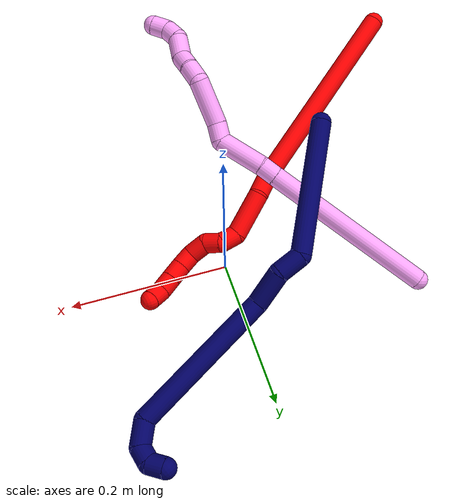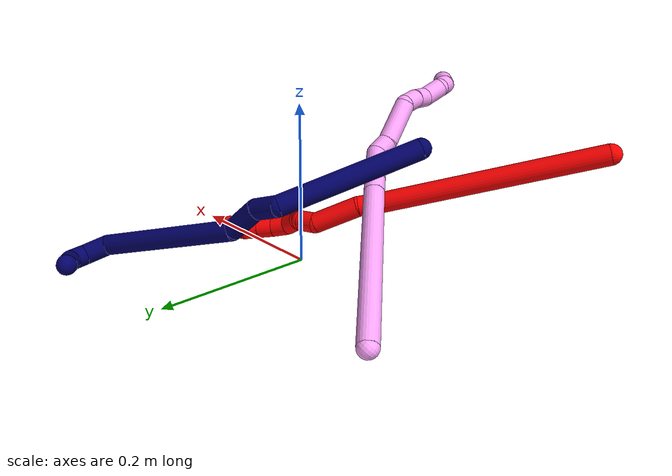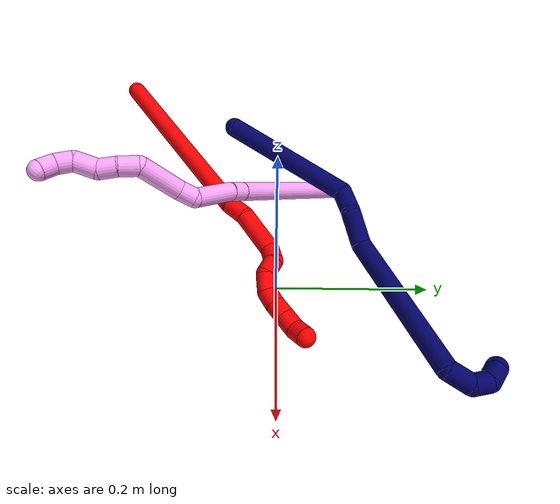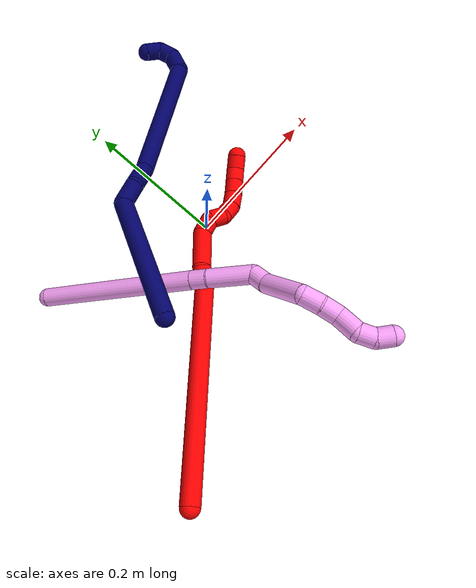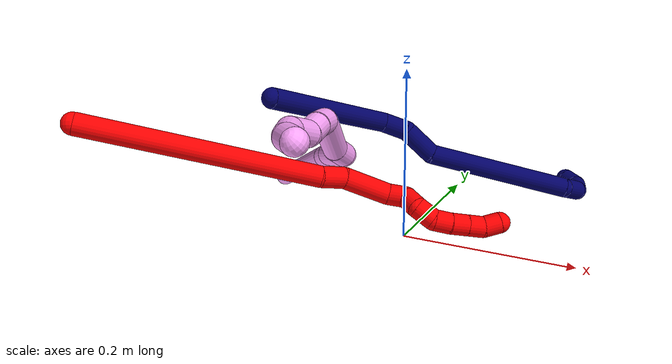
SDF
<sdf version="1.7">
 <world name="default">
  <model name="2">
   <static>0</static>
   <link name="2">
    <collision name="collision-cylinder-e_1_1_4">
     <pose>0.064474 0.018713 -0.115229 -2.9806 0.504599 -2.53504</pose>
     <geometry><cylinder><radius>0.0125</radius><length>0.266719</length></cylinder></geometry>
     <surface>
      <friction><ode><mu>1.16</mu><mu2>1.16</mu2><slip1>0</slip1><slip2>0</slip2></ode></friction>
      <contact><ode><kp>1e+06</kp><kd>1</kd><max_vel>0</max_vel><min_depth>0.001</min_depth></ode></contact>
     </surface>
    </collision>
    <visual name="visual-cylinder-e_1_1_4">
     <pose>0.064474 0.018713 -0.115229 -2.9806 0.504599 -2.53504</pose>
     <geometry><cylinder><radius>0.0125</radius><length>0.266719</length></cylinder></geometry>
     <material><ambient>1 0 0 1</ambient></material>
    </visual>
    <collision name="collision-cylinder-e_2_4_5">
     <pose>0.137267 0.036922 -0.241973 3.09782 0.625258 3.00635</pose>
     <geometry><cylinder><radius>0.0125</radius><length>0.02843</length></cylinder></geometry>
     <surface>
      <friction><ode><mu>1.16</mu><mu2>1.16</mu2><slip1>0</slip1><slip2>0</slip2></ode></friction>
      <contact><ode><kp>1e+06</kp><kd>1</kd><max_vel>0</max_vel><min_depth>0.001</min_depth></ode></contact>
     </surface>
    </collision>
    <visual name="visual-cylinder-e_2_4_5">
     <pose>0.137267 0.036922 -0.241973 3.09782 0.625258 3.00635</pose>
     <geometry><cylinder><radius>0.0125</radius><length>0.02843</length></cylinder></geometry>
     <material><ambient>1 0 0 1</ambient></material>
    </visual>
    <collision name="collision-cylinder-e_3_5_6">
     <pose>0.161781 0.043873 -0.276253 -2.82509 0.59444 -2.18095</pose>
     <geometry><cylinder><radius>0.0125</radius><length>0.05783</length></cylinder></geometry>
     <surface>
      <friction><ode><mu>1.16</mu><mu2>1.16</mu2><slip1>0</slip1><slip2>0</slip2></ode></friction>
      <contact><ode><kp>1e+06</kp><kd>1</kd><max_vel>0</max_vel><min_depth>0.001</min_depth></ode></contact>
     </surface>
    </collision>
    <visual name="visual-cylinder-e_3_5_6">
     <pose>0.161781 0.043873 -0.276253 -2.82509 0.59444 -2.18095</pose>
     <geometry><cylinder><radius>0.0125</radius><length>0.05783</length></cylinder></geometry>
     <material><ambient>1 0 0 1</ambient></material>
    </visual>
    <collision name="collision-cylinder-e_4_6_7">
     <pose>0.17847 0.052988 -0.309787 -2.98877 0.045438 -0.577021</pose>
     <geometry><cylinder><radius>0.0125</radius><length>0.021814</length></cylinder></geometry>
     <surface>
      <friction><ode><mu>1.16</mu><mu2>1.16</mu2><slip1>0</slip1><slip2>0</slip2></ode></friction>
      <contact><ode><kp>1e+06</kp><kd>1</kd><max_vel>0</max_vel><min_depth>0.001</min_depth></ode></contact>
     </surface>
    </collision>
    <visual name="visual-cylinder-e_4_6_7">
     <pose>0.17847 0.052988 -0.309787 -2.98877 0.045438 -0.577021</pose>
     <geometry><cylinder><radius>0.0125</radius><length>0.021814</length></cylinder></geometry>
     <material><ambient>1 0 0 1</ambient></material>
    </visual>
    <collision name="collision-cylinder-e_5_7_8">
     <pose>0.174332 0.060816 -0.327618 -2.4235 -0.45897 1.11347</pose>
     <geometry><cylinder><radius>0.0125</radius><length>0.020919</length></cylinder></geometry>
     <surface>
      <friction><ode><mu>1.16</mu><mu2>1.16</mu2><slip1>0</slip1><slip2>0</slip2></ode></friction>
      <contact><ode><kp>1e+06</kp><kd>1</kd><max_vel>0</max_vel><min_depth>0.001</min_depth></ode></contact>
     </surface>
    </collision>
    <visual name="visual-cylinder-e_5_7_8">
     <pose>0.174332 0.060816 -0.327618 -2.4235 -0.45897 1.11347</pose>
     <geometry><cylinder><radius>0.0125</radius><length>0.020919</length></cylinder></geometry>
     <material><ambient>1 0 0 1</ambient></material>
    </visual>
    <collision name="collision-cylinder-e_6_8_9">
     <pose>0.1714 0.073988 -0.34406 -2.50038 0.144388 -0.428885</pose>
     <geometry><cylinder><radius>0.0125</radius><length>0.023657</length></cylinder></geometry>
     <surface>
      <friction><ode><mu>1.16</mu><mu2>1.16</mu2><slip1>0</slip1><slip2>0</slip2></ode></friction>
      <contact><ode><kp>1e+06</kp><kd>1</kd><max_vel>0</max_vel><min_depth>0.001</min_depth></ode></contact>
     </surface>
    </collision>
    <visual name="visual-cylinder-e_6_8_9">
     <pose>0.1714 0.073988 -0.34406 -2.50038 0.144388 -0.428885</pose>
     <geometry><cylinder><radius>0.0125</radius><length>0.023657</length></cylinder></geometry>
     <material><ambient>1 0 0 1</ambient></material>
    </visual>
    <collision name="collision-cylinder-e_7_9_10">
     <pose>0.17695 0.082624 -0.36261 -2.96516 0.391759 -2.30298</pose>
     <geometry><cylinder><radius>0.0125</radius><length>0.020157</length></cylinder></geometry>
     <surface>
      <friction><ode><mu>1.16</mu><mu2>1.16</mu2><slip1>0</slip1><slip2>0</slip2></ode></friction>
      <contact><ode><kp>1e+06</kp><kd>1</kd><max_vel>0</max_vel><min_depth>0.001</min_depth></ode></contact>
     </surface>
    </collision>
    <visual name="visual-cylinder-e_7_9_10">
     <pose>0.17695 0.082624 -0.36261 -2.96516 0.391759 -2.30298</pose>
     <geometry><cylinder><radius>0.0125</radius><length>0.020157</length></cylinder></geometry>
     <material><ambient>1 0 0 1</ambient></material>
    </visual>
    <collision name="collision-cylinder-e_8_10_11">
     <pose>0.1851 0.08487 -0.380947 -3.0751 0.437965 -2.84491</pose>
     <geometry><cylinder><radius>0.0125</radius><length>0.020289</length></cylinder></geometry>
     <surface>
      <friction><ode><mu>1.16</mu><mu2>1.16</mu2><slip1>0</slip1><slip2>0</slip2></ode></friction>
      <contact><ode><kp>1e+06</kp><kd>1</kd><max_vel>0</max_vel><min_depth>0.001</min_depth></ode></contact>
     </surface>
    </collision>
    <visual name="visual-cylinder-e_8_10_11">
     <pose>0.1851 0.08487 -0.380947 -3.0751 0.437965 -2.84491</pose>
     <geometry><cylinder><radius>0.0125</radius><length>0.020289</length></cylinder></geometry>
     <material><ambient>1 0 0 1</ambient></material>
    </visual>
    <collision name="collision-cylinder-e_9_11_12">
     <pose>0.193644 0.086103 -0.399176 -3.07293 0.436818 -2.83453</pose>
     <geometry><cylinder><radius>0.0125</radius><length>0.02005</length></cylinder></geometry>
     <surface>
      <friction><ode><mu>1.16</mu><mu2>1.16</mu2><slip1>0</slip1><slip2>0</slip2></ode></friction>
      <contact><ode><kp>1e+06</kp><kd>1</kd><max_vel>0</max_vel><min_depth>0.001</min_depth></ode></contact>
     </surface>
    </collision>
    <visual name="visual-cylinder-e_9_11_12">
     <pose>0.193644 0.086103 -0.399176 -3.07293 0.436818 -2.83453</pose>
     <geometry><cylinder><radius>0.0125</radius><length>0.02005</length></cylinder></geometry>
     <material><ambient>1 0 0 1</ambient></material>
    </visual>
    <collision name="collision-cylinder-e_10_12_2">
     <pose>0.200362 0.083835 -0.417557 2.84071 0.248671 1.37897</pose>
     <geometry><cylinder><radius>0.0125</radius><length>0.020134</length></cylinder></geometry>
     <surface>
      <friction><ode><mu>1.16</mu><mu2>1.16</mu2><slip1>0</slip1><slip2>0</slip2></ode></friction>
      <contact><ode><kp>1e+06</kp><kd>1</kd><max_vel>0</max_vel><min_depth>0.001</min_depth></ode></contact>
     </surface>
    </collision>
    <visual name="visual-cylinder-e_10_12_2">
     <pose>0.200362 0.083835 -0.417557 2.84071 0.248671 1.37897</pose>
     <geometry><cylinder><radius>0.0125</radius><length>0.020134</length></cylinder></geometry>
     <material><ambient>1 0 0 1</ambient></material>
    </visual>
    <collision name="collision-sphere-2">
     <pose>0.20284 0.080943 -0.426877 0 -0 0</pose>
     <geometry><sphere><radius>0.0125</radius></sphere></geometry>
     <surface>
      <friction><ode><mu>1.16</mu><mu2>1.16</mu2><slip1>0</slip1><slip2>0</slip2></ode></friction>
      <contact><ode><kp>1e+06</kp><kd>1</kd><max_vel>0</max_vel><min_depth>0.001</min_depth></ode></contact>
     </surface>
    </collision>
    <visual name="visual-sphere-2">
     <pose>0.20284 0.080943 -0.426877 0 -0 0</pose>
     <geometry><sphere><radius>0.0125</radius></sphere></geometry>
     <material><ambient>1 0 0 1</ambient></material>
    </visual>
    <collision name="collision-sphere-12">
     <pose>0.197885 0.086727 -0.408238 0 -0 0</pose>
     <geometry><sphere><radius>0.0125</radius></sphere></geometry>
     <surface>
      <friction><ode><mu>1.16</mu><mu2>1.16</mu2><slip1>0</slip1><slip2>0</slip2></ode></friction>
      <contact><ode><kp>1e+06</kp><kd>1</kd><max_vel>0</max_vel><min_depth>0.001</min_depth></ode></contact>
     </surface>
    </collision>
    <visual name="visual-sphere-12">
     <pose>0.197885 0.086727 -0.408238 0 -0 0</pose>
     <geometry><sphere><radius>0.0125</radius></sphere></geometry>
     <material><ambient>1 0 0 1</ambient></material>
    </visual>
    <collision name="collision-sphere-11">
     <pose>0.189403 0.08548 -0.390114 0 -0 0</pose>
     <geometry><sphere><radius>0.0125</radius></sphere></geometry>
     <surface>
      <friction><ode><mu>1.16</mu><mu2>1.16</mu2><slip1>0</slip1><slip2>0</slip2></ode></friction>
      <contact><ode><kp>1e+06</kp><kd>1</kd><max_vel>0</max_vel><min_depth>0.001</min_depth></ode></contact>
     </surface>
    </collision>
    <visual name="visual-sphere-11">
     <pose>0.189403 0.08548 -0.390114 0 -0 0</pose>
     <geometry><sphere><radius>0.0125</radius></sphere></geometry>
     <material><ambient>1 0 0 1</ambient></material>
    </visual>
    <collision name="collision-sphere-10">
     <pose>0.180798 0.084259 -0.371781 0 -0 0</pose>
     <geometry><sphere><radius>0.0125</radius></sphere></geometry>
     <surface>
      <friction><ode><mu>1.16</mu><mu2>1.16</mu2><slip1>0</slip1><slip2>0</slip2></ode></friction>
      <contact><ode><kp>1e+06</kp><kd>1</kd><max_vel>0</max_vel><min_depth>0.001</min_depth></ode></contact>
     </surface>
    </collision>
    <visual name="visual-sphere-10">
     <pose>0.180798 0.084259 -0.371781 0 -0 0</pose>
     <geometry><sphere><radius>0.0125</radius></sphere></geometry>
     <material><ambient>1 0 0 1</ambient></material>
    </visual>
    <collision name="collision-sphere-9">
     <pose>0.173102 0.080989 -0.35344 0 -0 0</pose>
     <geometry><sphere><radius>0.0125</radius></sphere></geometry>
     <surface>
      <friction><ode><mu>1.16</mu><mu2>1.16</mu2><slip1>0</slip1><slip2>0</slip2></ode></friction>
      <contact><ode><kp>1e+06</kp><kd>1</kd><max_vel>0</max_vel><min_depth>0.001</min_depth></ode></contact>
     </surface>
    </collision>
    <visual name="visual-sphere-9">
     <pose>0.173102 0.080989 -0.35344 0 -0 0</pose>
     <geometry><sphere><radius>0.0125</radius></sphere></geometry>
     <material><ambient>1 0 0 1</ambient></material>
    </visual>
    <collision name="collision-sphere-4">
     <pose>0.128947 0.037426 -0.230459 0 -0 0</pose>
     <geometry><sphere><radius>0.0125</radius></sphere></geometry>
     <surface>
      <friction><ode><mu>1.16</mu><mu2>1.16</mu2><slip1>0</slip1><slip2>0</slip2></ode></friction>
      <contact><ode><kp>1e+06</kp><kd>1</kd><max_vel>0</max_vel><min_depth>0.001</min_depth></ode></contact>
     </surface>
    </collision>
    <visual name="visual-sphere-4">
     <pose>0.128947 0.037426 -0.230459 0 -0 0</pose>
     <geometry><sphere><radius>0.0125</radius></sphere></geometry>
     <material><ambient>1 0 0 1</ambient></material>
    </visual>
    <collision name="collision-sphere-1">
     <geometry><sphere><radius>0.0125</radius></sphere></geometry>
     <surface>
      <friction><ode><mu>1.16</mu><mu2>1.16</mu2><slip1>0</slip1><slip2>0</slip2></ode></friction>
      <contact><ode><kp>1e+06</kp><kd>1</kd><max_vel>0</max_vel><min_depth>0.001</min_depth></ode></contact>
     </surface>
    </collision>
    <visual name="visual-sphere-1">
     <geometry><sphere><radius>0.0125</radius></sphere></geometry>
     <material><ambient>1 0 0 1</ambient></material>
    </visual>
    <collision name="collision-sphere-8">
     <pose>0.169698 0.066986 -0.33468 0 -0 0</pose>
     <geometry><sphere><radius>0.0125</radius></sphere></geometry>
     <surface>
      <friction><ode><mu>1.16</mu><mu2>1.16</mu2><slip1>0</slip1><slip2>0</slip2></ode></friction>
      <contact><ode><kp>1e+06</kp><kd>1</kd><max_vel>0</max_vel><min_depth>0.001</min_depth></ode></contact>
     </surface>
    </collision>
    <visual name="visual-sphere-8">
     <pose>0.169698 0.066986 -0.33468 0 -0 0</pose>
     <geometry><sphere><radius>0.0125</radius></sphere></geometry>
     <material><ambient>1 0 0 1</ambient></material>
    </visual>
    <collision name="collision-sphere-5">
     <pose>0.145587 0.036418 -0.253488 0 -0 0</pose>
     <geometry><sphere><radius>0.0125</radius></sphere></geometry>
     <surface>
      <friction><ode><mu>1.16</mu><mu2>1.16</mu2><slip1>0</slip1><slip2>0</slip2></ode></friction>
      <contact><ode><kp>1e+06</kp><kd>1</kd><max_vel>0</max_vel><min_depth>0.001</min_depth></ode></contact>
     </surface>
    </collision>
    <visual name="visual-sphere-5">
     <pose>0.145587 0.036418 -0.253488 0 -0 0</pose>
     <geometry><sphere><radius>0.0125</radius></sphere></geometry>
     <material><ambient>1 0 0 1</ambient></material>
    </visual>
    <collision name="collision-sphere-6">
     <pose>0.177975 0.051329 -0.299018 0 -0 0</pose>
     <geometry><sphere><radius>0.0125</radius></sphere></geometry>
     <surface>
      <friction><ode><mu>1.16</mu><mu2>1.16</mu2><slip1>0</slip1><slip2>0</slip2></ode></friction>
      <contact><ode><kp>1e+06</kp><kd>1</kd><max_vel>0</max_vel><min_depth>0.001</min_depth></ode></contact>
     </surface>
    </collision>
    <visual name="visual-sphere-6">
     <pose>0.177975 0.051329 -0.299018 0 -0 0</pose>
     <geometry><sphere><radius>0.0125</radius></sphere></geometry>
     <material><ambient>1 0 0 1</ambient></material>
    </visual>
    <collision name="collision-sphere-7">
     <pose>0.178966 0.054647 -0.320556 0 -0 0</pose>
     <geometry><sphere><radius>0.0125</radius></sphere></geometry>
     <surface>
      <friction><ode><mu>1.16</mu><mu2>1.16</mu2><slip1>0</slip1><slip2>0</slip2></ode></friction>
      <contact><ode><kp>1e+06</kp><kd>1</kd><max_vel>0</max_vel><min_depth>0.001</min_depth></ode></contact>
     </surface>
    </collision>
    <visual name="visual-sphere-7">
     <pose>0.178966 0.054647 -0.320556 0 -0 0</pose>
     <geometry><sphere><radius>0.0125</radius></sphere></geometry>
     <material><ambient>1 0 0 1</ambient></material>
    </visual>
    <inertial>
     <pose>0.114577 0.039116 -0.213577 0 -0 0</pose>
     <mass>0.5</mass>
     <inertia>
      <ixx>-0.001947</ixx>
      <ixy>0</ixy>
      <ixz>0</ixz>
      <iyy>0.000577</iyy>
      <iyz>0</iyz>
      <izz>-0.001047</izz>
     </inertia>
    </inertial>
   </link>
   <pose>-0.278869 -0.219289 0.158296 -1.6401 0.454084 1.7984</pose>
  </model>
  <model name="4">
   <static>0</static>
   <link name="4">
    <collision name="collision-cylinder-e_1_1_4">
     <pose>0.088575 -0.022491 0.062974 0.343027 0.924136 0.172106</pose>
     <geometry><cylinder><radius>0.0125</radius><length>0.221965</length></cylinder></geometry>
     <surface>
      <friction><ode><mu>1.16</mu><mu2>1.16</mu2><slip1>0</slip1><slip2>0</slip2></ode></friction>
      <contact><ode><kp>1e+06</kp><kd>1</kd><max_vel>0</max_vel><min_depth>0.001</min_depth></ode></contact>
     </surface>
    </collision>
    <visual name="visual-cylinder-e_1_1_4">
     <pose>0.088575 -0.022491 0.062974 0.343027 0.924136 0.172106</pose>
     <geometry><cylinder><radius>0.0125</radius><length>0.221965</length></cylinder></geometry>
     <material><ambient>1 0.65098 0.996078 1</ambient></material>
    </visual>
    <collision name="collision-cylinder-e_2_4_5">
     <pose>0.185684 -0.047272 0.13223 0.349546 0.906182 0.171517</pose>
     <geometry><cylinder><radius>0.0125</radius><length>0.021682</length></cylinder></geometry>
     <surface>
      <friction><ode><mu>1.16</mu><mu2>1.16</mu2><slip1>0</slip1><slip2>0</slip2></ode></friction>
      <contact><ode><kp>1e+06</kp><kd>1</kd><max_vel>0</max_vel><min_depth>0.001</min_depth></ode></contact>
     </surface>
    </collision>
    <visual name="visual-cylinder-e_2_4_5">
     <pose>0.185684 -0.047272 0.13223 0.349546 0.906182 0.171517</pose>
     <geometry><cylinder><radius>0.0125</radius><length>0.021682</length></cylinder></geometry>
     <material><ambient>1 0.65098 0.996078 1</ambient></material>
    </visual>
    <collision name="collision-cylinder-e_3_5_6">
     <pose>0.217972 -0.058986 0.15307 0.574501 0.940168 0.297966</pose>
     <geometry><cylinder><radius>0.0125</radius><length>0.058823</length></cylinder></geometry>
     <surface>
      <friction><ode><mu>1.16</mu><mu2>1.16</mu2><slip1>0</slip1><slip2>0</slip2></ode></friction>
      <contact><ode><kp>1e+06</kp><kd>1</kd><max_vel>0</max_vel><min_depth>0.001</min_depth></ode></contact>
     </surface>
    </collision>
    <visual name="visual-cylinder-e_3_5_6">
     <pose>0.217972 -0.058986 0.15307 0.574501 0.940168 0.297966</pose>
     <geometry><cylinder><radius>0.0125</radius><length>0.058823</length></cylinder></geometry>
     <material><ambient>1 0.65098 0.996078 1</ambient></material>
    </visual>
    <collision name="collision-cylinder-e_4_6_7">
     <pose>0.244074 -0.071346 0.178167 0.271723 0.211422 0.029008</pose>
     <geometry><cylinder><radius>0.0125</radius><length>0.022379</length></cylinder></geometry>
     <surface>
      <friction><ode><mu>1.16</mu><mu2>1.16</mu2><slip1>0</slip1><slip2>0</slip2></ode></friction>
      <contact><ode><kp>1e+06</kp><kd>1</kd><max_vel>0</max_vel><min_depth>0.001</min_depth></ode></contact>
     </surface>
    </collision>
    <visual name="visual-cylinder-e_4_6_7">
     <pose>0.244074 -0.071346 0.178167 0.271723 0.211422 0.029008</pose>
     <geometry><cylinder><radius>0.0125</radius><length>0.022379</length></cylinder></geometry>
     <material><ambient>1 0.65098 0.996078 1</ambient></material>
    </visual>
    <collision name="collision-cylinder-e_5_7_8">
     <pose>0.258226 -0.075178 0.214966 0.034078 0.422216 0.007304</pose>
     <geometry><cylinder><radius>0.0125</radius><length>0.057609</length></cylinder></geometry>
     <surface>
      <friction><ode><mu>1.16</mu><mu2>1.16</mu2><slip1>0</slip1><slip2>0</slip2></ode></friction>
      <contact><ode><kp>1e+06</kp><kd>1</kd><max_vel>0</max_vel><min_depth>0.001</min_depth></ode></contact>
     </surface>
    </collision>
    <visual name="visual-cylinder-e_5_7_8">
     <pose>0.258226 -0.075178 0.214966 0.034078 0.422216 0.007304</pose>
     <geometry><cylinder><radius>0.0125</radius><length>0.057609</length></cylinder></geometry>
     <material><ambient>1 0.65098 0.996078 1</ambient></material>
    </visual>
    <collision name="collision-cylinder-e_6_8_9">
     <pose>0.274645 -0.084068 0.249591 0.762775 0.379555 0.15376</pose>
     <geometry><cylinder><radius>0.0125</radius><length>0.024916</length></cylinder></geometry>
     <surface>
      <friction><ode><mu>1.16</mu><mu2>1.16</mu2><slip1>0</slip1><slip2>0</slip2></ode></friction>
      <contact><ode><kp>1e+06</kp><kd>1</kd><max_vel>0</max_vel><min_depth>0.001</min_depth></ode></contact>
     </surface>
    </collision>
    <visual name="visual-cylinder-e_6_8_9">
     <pose>0.274645 -0.084068 0.249591 0.762775 0.379555 0.15376</pose>
     <geometry><cylinder><radius>0.0125</radius><length>0.024916</length></cylinder></geometry>
     <material><ambient>1 0.65098 0.996078 1</ambient></material>
    </visual>
    <collision name="collision-cylinder-e_7_9_10">
     <pose>0.282641 -0.100857 0.264455 0.934426 0.29978 0.152078</pose>
     <geometry><cylinder><radius>0.0125</radius><length>0.022891</length></cylinder></geometry>
     <surface>
      <friction><ode><mu>1.16</mu><mu2>1.16</mu2><slip1>0</slip1><slip2>0</slip2></ode></friction>
      <contact><ode><kp>1e+06</kp><kd>1</kd><max_vel>0</max_vel><min_depth>0.001</min_depth></ode></contact>
     </surface>
    </collision>
    <visual name="visual-cylinder-e_7_9_10">
     <pose>0.282641 -0.100857 0.264455 0.934426 0.29978 0.152078</pose>
     <geometry><cylinder><radius>0.0125</radius><length>0.022891</length></cylinder></geometry>
     <material><ambient>1 0.65098 0.996078 1</ambient></material>
    </visual>
    <collision name="collision-cylinder-e_8_10_11">
     <pose>0.287818 -0.115994 0.28357 0.465791 0.126578 0.030062</pose>
     <geometry><cylinder><radius>0.0125</radius><length>0.028471</length></cylinder></geometry>
     <surface>
      <friction><ode><mu>1.16</mu><mu2>1.16</mu2><slip1>0</slip1><slip2>0</slip2></ode></friction>
      <contact><ode><kp>1e+06</kp><kd>1</kd><max_vel>0</max_vel><min_depth>0.001</min_depth></ode></contact>
     </surface>
    </collision>
    <visual name="visual-cylinder-e_8_10_11">
     <pose>0.287818 -0.115994 0.28357 0.465791 0.126578 0.030062</pose>
     <geometry><cylinder><radius>0.0125</radius><length>0.028471</length></cylinder></geometry>
     <material><ambient>1 0.65098 0.996078 1</ambient></material>
    </visual>
    <collision name="collision-cylinder-e_9_11_12">
     <pose>0.29495 -0.129332 0.301871 0.888479 0.534434 0.259147</pose>
     <geometry><cylinder><radius>0.0125</radius><length>0.020946</length></cylinder></geometry>
     <surface>
      <friction><ode><mu>1.16</mu><mu2>1.16</mu2><slip1>0</slip1><slip2>0</slip2></ode></friction>
      <contact><ode><kp>1e+06</kp><kd>1</kd><max_vel>0</max_vel><min_depth>0.001</min_depth></ode></contact>
     </surface>
    </collision>
    <visual name="visual-cylinder-e_9_11_12">
     <pose>0.29495 -0.129332 0.301871 0.888479 0.534434 0.259147</pose>
     <geometry><cylinder><radius>0.0125</radius><length>0.020946</length></cylinder></geometry>
     <material><ambient>1 0.65098 0.996078 1</ambient></material>
    </visual>
    <collision name="collision-cylinder-e_10_12_2">
     <pose>0.308908 -0.140766 0.310576 0.973246 1.01384 0.571511</pose>
     <geometry><cylinder><radius>0.0125</radius><length>0.020318</length></cylinder></geometry>
     <surface>
      <friction><ode><mu>1.16</mu><mu2>1.16</mu2><slip1>0</slip1><slip2>0</slip2></ode></friction>
      <contact><ode><kp>1e+06</kp><kd>1</kd><max_vel>0</max_vel><min_depth>0.001</min_depth></ode></contact>
     </surface>
    </collision>
    <visual name="visual-cylinder-e_10_12_2">
     <pose>0.308908 -0.140766 0.310576 0.973246 1.01384 0.571511</pose>
     <geometry><cylinder><radius>0.0125</radius><length>0.020318</length></cylinder></geometry>
     <material><ambient>1 0.65098 0.996078 1</ambient></material>
    </visual>
    <collision name="collision-sphere-2">
     <pose>0.317531 -0.145206 0.313597 0 -0 0</pose>
     <geometry><sphere><radius>0.0125</radius></sphere></geometry>
     <surface>
      <friction><ode><mu>1.16</mu><mu2>1.16</mu2><slip1>0</slip1><slip2>0</slip2></ode></friction>
      <contact><ode><kp>1e+06</kp><kd>1</kd><max_vel>0</max_vel><min_depth>0.001</min_depth></ode></contact>
     </surface>
    </collision>
    <visual name="visual-sphere-2">
     <pose>0.317531 -0.145206 0.313597 0 -0 0</pose>
     <geometry><sphere><radius>0.0125</radius></sphere></geometry>
     <material><ambient>1 0.65098 0.996078 1</ambient></material>
    </visual>
    <collision name="collision-sphere-12">
     <pose>0.300284 -0.136327 0.307555 0 -0 0</pose>
     <geometry><sphere><radius>0.0125</radius></sphere></geometry>
     <surface>
      <friction><ode><mu>1.16</mu><mu2>1.16</mu2><slip1>0</slip1><slip2>0</slip2></ode></friction>
      <contact><ode><kp>1e+06</kp><kd>1</kd><max_vel>0</max_vel><min_depth>0.001</min_depth></ode></contact>
     </surface>
    </collision>
    <visual name="visual-sphere-12">
     <pose>0.300284 -0.136327 0.307555 0 -0 0</pose>
     <geometry><sphere><radius>0.0125</radius></sphere></geometry>
     <material><ambient>1 0.65098 0.996078 1</ambient></material>
    </visual>
    <collision name="collision-sphere-11">
     <pose>0.289615 -0.122337 0.296188 0 -0 0</pose>
     <geometry><sphere><radius>0.0125</radius></sphere></geometry>
     <surface>
      <friction><ode><mu>1.16</mu><mu2>1.16</mu2><slip1>0</slip1><slip2>0</slip2></ode></friction>
      <contact><ode><kp>1e+06</kp><kd>1</kd><max_vel>0</max_vel><min_depth>0.001</min_depth></ode></contact>
     </surface>
    </collision>
    <visual name="visual-sphere-11">
     <pose>0.289615 -0.122337 0.296188 0 -0 0</pose>
     <geometry><sphere><radius>0.0125</radius></sphere></geometry>
     <material><ambient>1 0.65098 0.996078 1</ambient></material>
    </visual>
    <collision name="collision-sphere-10">
     <pose>0.286021 -0.109652 0.270953 0 -0 0</pose>
     <geometry><sphere><radius>0.0125</radius></sphere></geometry>
     <surface>
      <friction><ode><mu>1.16</mu><mu2>1.16</mu2><slip1>0</slip1><slip2>0</slip2></ode></friction>
      <contact><ode><kp>1e+06</kp><kd>1</kd><max_vel>0</max_vel><min_depth>0.001</min_depth></ode></contact>
     </surface>
    </collision>
    <visual name="visual-sphere-10">
     <pose>0.286021 -0.109652 0.270953 0 -0 0</pose>
     <geometry><sphere><radius>0.0125</radius></sphere></geometry>
     <material><ambient>1 0.65098 0.996078 1</ambient></material>
    </visual>
    <collision name="collision-sphere-9">
     <pose>0.279261 -0.092063 0.257956 0 -0 0</pose>
     <geometry><sphere><radius>0.0125</radius></sphere></geometry>
     <surface>
      <friction><ode><mu>1.16</mu><mu2>1.16</mu2><slip1>0</slip1><slip2>0</slip2></ode></friction>
      <contact><ode><kp>1e+06</kp><kd>1</kd><max_vel>0</max_vel><min_depth>0.001</min_depth></ode></contact>
     </surface>
    </collision>
    <visual name="visual-sphere-9">
     <pose>0.279261 -0.092063 0.257956 0 -0 0</pose>
     <geometry><sphere><radius>0.0125</radius></sphere></geometry>
     <material><ambient>1 0.65098 0.996078 1</ambient></material>
    </visual>
    <collision name="collision-sphere-4">
     <pose>0.17715 -0.044982 0.125948 0 -0 0</pose>
     <geometry><sphere><radius>0.0125</radius></sphere></geometry>
     <surface>
      <friction><ode><mu>1.16</mu><mu2>1.16</mu2><slip1>0</slip1><slip2>0</slip2></ode></friction>
      <contact><ode><kp>1e+06</kp><kd>1</kd><max_vel>0</max_vel><min_depth>0.001</min_depth></ode></contact>
     </surface>
    </collision>
    <visual name="visual-sphere-4">
     <pose>0.17715 -0.044982 0.125948 0 -0 0</pose>
     <geometry><sphere><radius>0.0125</radius></sphere></geometry>
     <material><ambient>1 0.65098 0.996078 1</ambient></material>
    </visual>
    <collision name="collision-sphere-1">
     <geometry><sphere><radius>0.0125</radius></sphere></geometry>
     <surface>
      <friction><ode><mu>1.16</mu><mu2>1.16</mu2><slip1>0</slip1><slip2>0</slip2></ode></friction>
      <contact><ode><kp>1e+06</kp><kd>1</kd><max_vel>0</max_vel><min_depth>0.001</min_depth></ode></contact>
     </surface>
    </collision>
    <visual name="visual-sphere-1">
     <geometry><sphere><radius>0.0125</radius></sphere></geometry>
     <material><ambient>1 0.65098 0.996078 1</ambient></material>
    </visual>
    <collision name="collision-sphere-8">
     <pose>0.27003 -0.076073 0.241226 0 -0 0</pose>
     <geometry><sphere><radius>0.0125</radius></sphere></geometry>
     <surface>
      <friction><ode><mu>1.16</mu><mu2>1.16</mu2><slip1>0</slip1><slip2>0</slip2></ode></friction>
      <contact><ode><kp>1e+06</kp><kd>1</kd><max_vel>0</max_vel><min_depth>0.001</min_depth></ode></contact>
     </surface>
    </collision>
    <visual name="visual-sphere-8">
     <pose>0.27003 -0.076073 0.241226 0 -0 0</pose>
     <geometry><sphere><radius>0.0125</radius></sphere></geometry>
     <material><ambient>1 0.65098 0.996078 1</ambient></material>
    </visual>
    <collision name="collision-sphere-5">
     <pose>0.194218 -0.049562 0.138512 0 -0 0</pose>
     <geometry><sphere><radius>0.0125</radius></sphere></geometry>
     <surface>
      <friction><ode><mu>1.16</mu><mu2>1.16</mu2><slip1>0</slip1><slip2>0</slip2></ode></friction>
      <contact><ode><kp>1e+06</kp><kd>1</kd><max_vel>0</max_vel><min_depth>0.001</min_depth></ode></contact>
     </surface>
    </collision>
    <visual name="visual-sphere-5">
     <pose>0.194218 -0.049562 0.138512 0 -0 0</pose>
     <geometry><sphere><radius>0.0125</radius></sphere></geometry>
     <material><ambient>1 0.65098 0.996078 1</ambient></material>
    </visual>
    <collision name="collision-sphere-6">
     <pose>0.241726 -0.06841 0.167628 0 -0 0</pose>
     <geometry><sphere><radius>0.0125</radius></sphere></geometry>
     <surface>
      <friction><ode><mu>1.16</mu><mu2>1.16</mu2><slip1>0</slip1><slip2>0</slip2></ode></friction>
      <contact><ode><kp>1e+06</kp><kd>1</kd><max_vel>0</max_vel><min_depth>0.001</min_depth></ode></contact>
     </surface>
    </collision>
    <visual name="visual-sphere-6">
     <pose>0.241726 -0.06841 0.167628 0 -0 0</pose>
     <geometry><sphere><radius>0.0125</radius></sphere></geometry>
     <material><ambient>1 0.65098 0.996078 1</ambient></material>
    </visual>
    <collision name="collision-sphere-7">
     <pose>0.246422 -0.074282 0.188706 0 -0 0</pose>
     <geometry><sphere><radius>0.0125</radius></sphere></geometry>
     <surface>
      <friction><ode><mu>1.16</mu><mu2>1.16</mu2><slip1>0</slip1><slip2>0</slip2></ode></friction>
      <contact><ode><kp>1e+06</kp><kd>1</kd><max_vel>0</max_vel><min_depth>0.001</min_depth></ode></contact>
     </surface>
    </collision>
    <visual name="visual-sphere-7">
     <pose>0.246422 -0.074282 0.188706 0 -0 0</pose>
     <geometry><sphere><radius>0.0125</radius></sphere></geometry>
     <material><ambient>1 0.65098 0.996078 1</ambient></material>
    </visual>
    <inertial>
     <pose>0.181617 -0.057379 0.150399 0 -0 0</pose>
     <mass>0.5</mass>
     <inertia>
      <ixx>0.00071</ixx>
      <ixy>0</ixy>
      <ixz>0</ixz>
      <iyy>0.001032</iyy>
      <iyz>0</iyz>
      <izz>-0.000538</izz>
     </inertia>
    </inertial>
   </link>
   <pose>-0.223346 0.098853 0.012011 0.779933 -0.181757 -0.158139</pose>
  </model>
  <model name="7">
   <static>0</static>
   <link name="7">
    <collision name="collision-cylinder-e_1_1_4">
     <pose>0.016526 0.062791 -0.055077 -2.29084 0.195336 -0.425988</pose>
     <geometry><cylinder><radius>0.0125</radius><length>0.170285</length></cylinder></geometry>
     <surface>
      <friction><ode><mu>1.16</mu><mu2>1.16</mu2><slip1>0</slip1><slip2>0</slip2></ode></friction>
      <contact><ode><kp>1e+06</kp><kd>1</kd><max_vel>0</max_vel><min_depth>0.001</min_depth></ode></contact>
     </surface>
    </collision>
    <visual name="visual-cylinder-e_1_1_4">
     <pose>0.016526 0.062791 -0.055077 -2.29084 0.195336 -0.425988</pose>
     <geometry><cylinder><radius>0.0125</radius><length>0.170285</length></cylinder></geometry>
     <material><ambient>0.003922 0 0.403922 1</ambient></material>
    </visual>
    <collision name="collision-cylinder-e_2_4_5">
     <pose>0.042733 0.138149 -0.110706 -1.61475 0.655942 -0.683227</pose>
     <geometry><cylinder><radius>0.0125</radius><length>0.031747</length></cylinder></geometry>
     <surface>
      <friction><ode><mu>1.16</mu><mu2>1.16</mu2><slip1>0</slip1><slip2>0</slip2></ode></friction>
      <contact><ode><kp>1e+06</kp><kd>1</kd><max_vel>0</max_vel><min_depth>0.001</min_depth></ode></contact>
     </surface>
    </collision>
    <visual name="visual-cylinder-e_2_4_5">
     <pose>0.042733 0.138149 -0.110706 -1.61475 0.655942 -0.683227</pose>
     <geometry><cylinder><radius>0.0125</radius><length>0.031747</length></cylinder></geometry>
     <material><ambient>0.003922 0 0.403922 1</ambient></material>
    </visual>
    <collision name="collision-cylinder-e_3_5_6">
     <pose>0.069968 0.162155 -0.119094 -2.17133 0.902236 -1.48639</pose>
     <geometry><cylinder><radius>0.0125</radius><length>0.044737</length></cylinder></geometry>
     <surface>
      <friction><ode><mu>1.16</mu><mu2>1.16</mu2><slip1>0</slip1><slip2>0</slip2></ode></friction>
      <contact><ode><kp>1e+06</kp><kd>1</kd><max_vel>0</max_vel><min_depth>0.001</min_depth></ode></contact>
     </surface>
    </collision>
    <visual name="visual-cylinder-e_3_5_6">
     <pose>0.069968 0.162155 -0.119094 -2.17133 0.902236 -1.48639</pose>
     <geometry><cylinder><radius>0.0125</radius><length>0.044737</length></cylinder></geometry>
     <material><ambient>0.003922 0 0.403922 1</ambient></material>
    </visual>
    <collision name="collision-cylinder-e_4_6_7">
     <pose>0.131967 0.251661 -0.140571 -1.7438 0.511132 -0.602847</pose>
     <geometry><cylinder><radius>0.0125</radius><length>0.181724</length></cylinder></geometry>
     <surface>
      <friction><ode><mu>1.16</mu><mu2>1.16</mu2><slip1>0</slip1><slip2>0</slip2></ode></friction>
      <contact><ode><kp>1e+06</kp><kd>1</kd><max_vel>0</max_vel><min_depth>0.001</min_depth></ode></contact>
     </surface>
    </collision>
    <visual name="visual-cylinder-e_4_6_7">
     <pose>0.131967 0.251661 -0.140571 -1.7438 0.511132 -0.602847</pose>
     <geometry><cylinder><radius>0.0125</radius><length>0.181724</length></cylinder></geometry>
     <material><ambient>0.003922 0 0.403922 1</ambient></material>
    </visual>
    <collision name="collision-cylinder-e_5_7_8">
     <pose>0.179221 0.340479 -0.164391 -2.3288 0.187405 -0.429996</pose>
     <geometry><cylinder><radius>0.0125</radius><length>0.03014</length></cylinder></geometry>
     <surface>
      <friction><ode><mu>1.16</mu><mu2>1.16</mu2><slip1>0</slip1><slip2>0</slip2></ode></friction>
      <contact><ode><kp>1e+06</kp><kd>1</kd><max_vel>0</max_vel><min_depth>0.001</min_depth></ode></contact>
     </surface>
    </collision>
    <visual name="visual-cylinder-e_5_7_8">
     <pose>0.179221 0.340479 -0.164391 -2.3288 0.187405 -0.429996</pose>
     <geometry><cylinder><radius>0.0125</radius><length>0.03014</length></cylinder></geometry>
     <material><ambient>0.003922 0 0.403922 1</ambient></material>
    </visual>
    <collision name="collision-cylinder-e_6_8_9">
     <pose>0.177446 0.355027 -0.183121 -2.72382 -0.455546 1.66005</pose>
     <geometry><cylinder><radius>0.0125</radius><length>0.020836</length></cylinder></geometry>
     <surface>
      <friction><ode><mu>1.16</mu><mu2>1.16</mu2><slip1>0</slip1><slip2>0</slip2></ode></friction>
      <contact><ode><kp>1e+06</kp><kd>1</kd><max_vel>0</max_vel><min_depth>0.001</min_depth></ode></contact>
     </surface>
    </collision>
    <visual name="visual-cylinder-e_6_8_9">
     <pose>0.177446 0.355027 -0.183121 -2.72382 -0.455546 1.66005</pose>
     <geometry><cylinder><radius>0.0125</radius><length>0.020836</length></cylinder></geometry>
     <material><ambient>0.003922 0 0.403922 1</ambient></material>
    </visual>
    <collision name="collision-cylinder-e_7_9_2">
     <pose>0.165564 0.356229 -0.198409 2.77408 -0.790868 -2.30381</pose>
     <geometry><cylinder><radius>0.0125</radius><length>0.020531</length></cylinder></geometry>
     <surface>
      <friction><ode><mu>1.16</mu><mu2>1.16</mu2><slip1>0</slip1><slip2>0</slip2></ode></friction>
      <contact><ode><kp>1e+06</kp><kd>1</kd><max_vel>0</max_vel><min_depth>0.001</min_depth></ode></contact>
     </surface>
    </collision>
    <visual name="visual-cylinder-e_7_9_2">
     <pose>0.165564 0.356229 -0.198409 2.77408 -0.790868 -2.30381</pose>
     <geometry><cylinder><radius>0.0125</radius><length>0.020531</length></cylinder></geometry>
     <material><ambient>0.003922 0 0.403922 1</ambient></material>
    </visual>
    <collision name="collision-sphere-2">
     <pose>0.158266 0.353636 -0.205146 0 -0 0</pose>
     <geometry><sphere><radius>0.0125</radius></sphere></geometry>
     <surface>
      <friction><ode><mu>1.16</mu><mu2>1.16</mu2><slip1>0</slip1><slip2>0</slip2></ode></friction>
      <contact><ode><kp>1e+06</kp><kd>1</kd><max_vel>0</max_vel><min_depth>0.001</min_depth></ode></contact>
     </surface>
    </collision>
    <visual name="visual-sphere-2">
     <pose>0.158266 0.353636 -0.205146 0 -0 0</pose>
     <geometry><sphere><radius>0.0125</radius></sphere></geometry>
     <material><ambient>0.003922 0 0.403922 1</ambient></material>
    </visual>
    <collision name="collision-sphere-9">
     <pose>0.172862 0.358823 -0.191672 0 -0 0</pose>
     <geometry><sphere><radius>0.0125</radius></sphere></geometry>
     <surface>
      <friction><ode><mu>1.16</mu><mu2>1.16</mu2><slip1>0</slip1><slip2>0</slip2></ode></friction>
      <contact><ode><kp>1e+06</kp><kd>1</kd><max_vel>0</max_vel><min_depth>0.001</min_depth></ode></contact>
     </surface>
    </collision>
    <visual name="visual-sphere-9">
     <pose>0.172862 0.358823 -0.191672 0 -0 0</pose>
     <geometry><sphere><radius>0.0125</radius></sphere></geometry>
     <material><ambient>0.003922 0 0.403922 1</ambient></material>
    </visual>
    <collision name="collision-sphere-4">
     <pose>0.033052 0.125581 -0.110153 0 -0 0</pose>
     <geometry><sphere><radius>0.0125</radius></sphere></geometry>
     <surface>
      <friction><ode><mu>1.16</mu><mu2>1.16</mu2><slip1>0</slip1><slip2>0</slip2></ode></friction>
      <contact><ode><kp>1e+06</kp><kd>1</kd><max_vel>0</max_vel><min_depth>0.001</min_depth></ode></contact>
     </surface>
    </collision>
    <visual name="visual-sphere-4">
     <pose>0.033052 0.125581 -0.110153 0 -0 0</pose>
     <geometry><sphere><radius>0.0125</radius></sphere></geometry>
     <material><ambient>0.003922 0 0.403922 1</ambient></material>
    </visual>
    <collision name="collision-sphere-1">
     <geometry><sphere><radius>0.0125</radius></sphere></geometry>
     <surface>
      <friction><ode><mu>1.16</mu><mu2>1.16</mu2><slip1>0</slip1><slip2>0</slip2></ode></friction>
      <contact><ode><kp>1e+06</kp><kd>1</kd><max_vel>0</max_vel><min_depth>0.001</min_depth></ode></contact>
     </surface>
    </collision>
    <visual name="visual-sphere-1">
     <geometry><sphere><radius>0.0125</radius></sphere></geometry>
     <material><ambient>0.003922 0 0.403922 1</ambient></material>
    </visual>
    <collision name="collision-sphere-8">
     <pose>0.182029 0.351231 -0.17457 0 -0 0</pose>
     <geometry><sphere><radius>0.0125</radius></sphere></geometry>
     <surface>
      <friction><ode><mu>1.16</mu><mu2>1.16</mu2><slip1>0</slip1><slip2>0</slip2></ode></friction>
      <contact><ode><kp>1e+06</kp><kd>1</kd><max_vel>0</max_vel><min_depth>0.001</min_depth></ode></contact>
     </surface>
    </collision>
    <visual name="visual-sphere-8">
     <pose>0.182029 0.351231 -0.17457 0 -0 0</pose>
     <geometry><sphere><radius>0.0125</radius></sphere></geometry>
     <material><ambient>0.003922 0 0.403922 1</ambient></material>
    </visual>
    <collision name="collision-sphere-5">
     <pose>0.052415 0.150716 -0.111259 0 -0 0</pose>
     <geometry><sphere><radius>0.0125</radius></sphere></geometry>
     <surface>
      <friction><ode><mu>1.16</mu><mu2>1.16</mu2><slip1>0</slip1><slip2>0</slip2></ode></friction>
      <contact><ode><kp>1e+06</kp><kd>1</kd><max_vel>0</max_vel><min_depth>0.001</min_depth></ode></contact>
     </surface>
    </collision>
    <visual name="visual-sphere-5">
     <pose>0.052415 0.150716 -0.111259 0 -0 0</pose>
     <geometry><sphere><radius>0.0125</radius></sphere></geometry>
     <material><ambient>0.003922 0 0.403922 1</ambient></material>
    </visual>
    <collision name="collision-sphere-6">
     <pose>0.087521 0.173595 -0.126929 0 -0 0</pose>
     <geometry><sphere><radius>0.0125</radius></sphere></geometry>
     <surface>
      <friction><ode><mu>1.16</mu><mu2>1.16</mu2><slip1>0</slip1><slip2>0</slip2></ode></friction>
      <contact><ode><kp>1e+06</kp><kd>1</kd><max_vel>0</max_vel><min_depth>0.001</min_depth></ode></contact>
     </surface>
    </collision>
    <visual name="visual-sphere-6">
     <pose>0.087521 0.173595 -0.126929 0 -0 0</pose>
     <geometry><sphere><radius>0.0125</radius></sphere></geometry>
     <material><ambient>0.003922 0 0.403922 1</ambient></material>
    </visual>
    <collision name="collision-sphere-7">
     <pose>0.176414 0.329727 -0.154213 0 -0 0</pose>
     <geometry><sphere><radius>0.0125</radius></sphere></geometry>
     <surface>
      <friction><ode><mu>1.16</mu><mu2>1.16</mu2><slip1>0</slip1><slip2>0</slip2></ode></friction>
      <contact><ode><kp>1e+06</kp><kd>1</kd><max_vel>0</max_vel><min_depth>0.001</min_depth></ode></contact>
     </surface>
    </collision>
    <visual name="visual-sphere-7">
     <pose>0.176414 0.329727 -0.154213 0 -0 0</pose>
     <geometry><sphere><radius>0.0125</radius></sphere></geometry>
     <material><ambient>0.003922 0 0.403922 1</ambient></material>
    </visual>
    <inertial>
     <pose>0.087561 0.186077 -0.11322 0 -0 0</pose>
     <mass>0.5</mass>
     <inertia>
      <ixx>0.000327</ixx>
      <ixy>0</ixy>
      <ixz>0</ixz>
      <iyy>-0.000554</iyy>
      <iyz>0</iyz>
      <izz>-0.001108</izz>
     </inertia>
    </inertial>
   </link>
   <pose>-0.14065 -0.057749 0.165393 0.442958 0.940815 -0.59285</pose>
  </model>
 </world>
</sdf>
